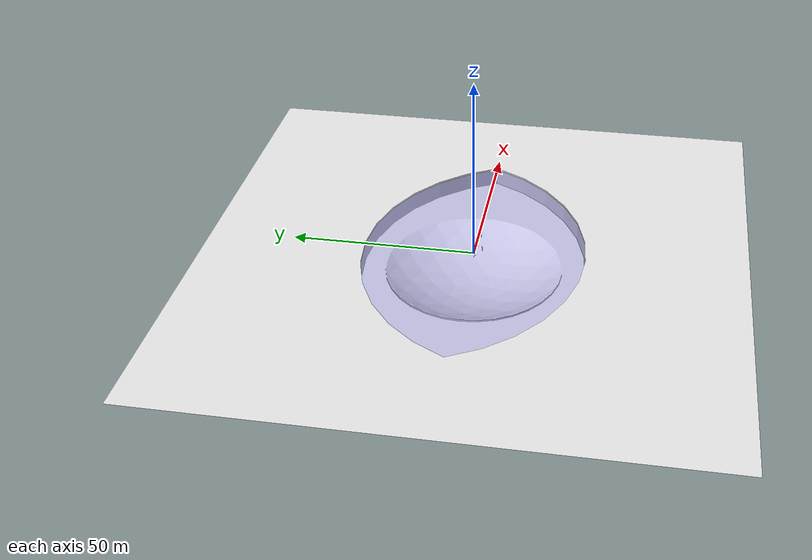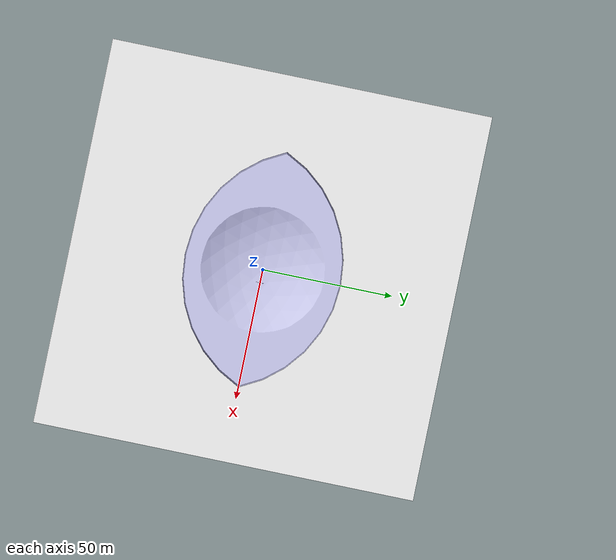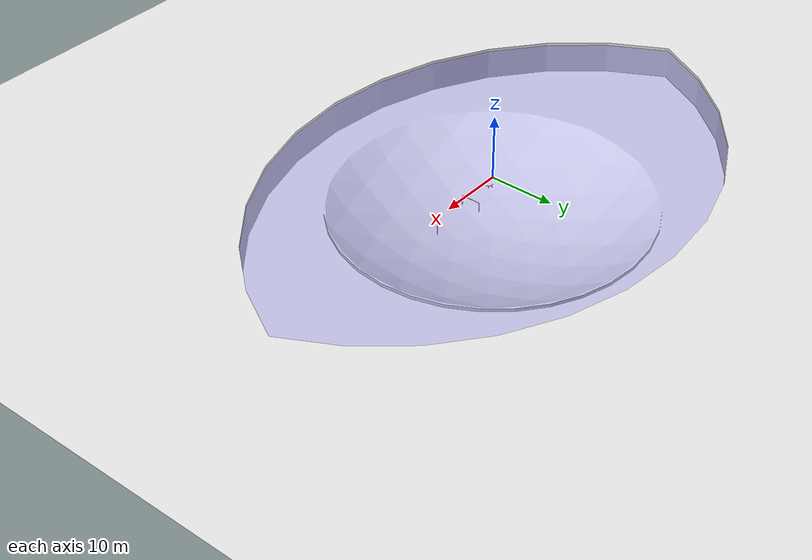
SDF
<sdf version="1.5">
 <world name="default">
  <physics type="ode">
   <real_time_update_rate>100</real_time_update_rate>
   <max_step_size>0.01</max_step_size>
  </physics>
  <spherical_coordinates>
   <surface_model>EARTH_WGS84</surface_model>
   <world_frame_orientation>ENU</world_frame_orientation>
   <latitude_deg>29.6474</latitude_deg>
   <longitude_deg>277.65027</longitude_deg>
   <elevation>0.4</elevation>
   <heading_deg>180</heading_deg>
  </spherical_coordinates>
  <magnetic_field>4.8302E-6 2.44943E-5 3.89367E-5</magnetic_field>
  <light name="illum" type="directional">
   <pose>-4 18 9 0 -.75 0</pose>
   <diffuse>0.1 0.4 1 1</diffuse>
   <attenuation><constant>1</constant></attenuation>
  </light>
  <light name="sky_illum" type="directional">
   <pose>0 0 5 3.14 0 0</pose>
   <diffuse>1 1 1 1</diffuse>
   <attenuation><constant>1</constant></attenuation>
  </light>
  <include><uri>model://sun</uri></include>
  <light name="user_point_light_0" type="point">
   <pose>0.109933 -0.142384 1 0 -0 0</pose>
   <diffuse>0.5 0.5 0.5 1</diffuse>
   <specular>0.1 0.1 0.1 1</specular>
   <attenuation>
    <range>100</range>
    <constant>0.5</constant>
    <linear>0.01</linear>
    <quadratic>0.001</quadratic>
   </attenuation>
   <cast_shadows>0</cast_shadows>
   <direction>0 0 -1</direction>
  </light>
  <light name="user_point_light_1" type="point">
   <pose>-29.7505 -0.454729 1 0 -0 0</pose>
   <diffuse>0.5 0.5 0.5 1</diffuse>
   <specular>0.1 0.1 0.1 1</specular>
   <attenuation>
    <range>100</range>
    <constant>0.5</constant>
    <linear>0.01</linear>
    <quadratic>0.001</quadratic>
   </attenuation>
   <cast_shadows>0</cast_shadows>
   <direction>0 0 -1</direction>
  </light>
  <light name="user_point_light_2" type="point">
   <pose>31.6112 -2.69613 1 0 -0 0</pose>
   <diffuse>0.5 0.5 0.5 1</diffuse>
   <specular>0.1 0.1 0.1 1</specular>
   <attenuation>
    <range>100</range>
    <constant>0.5</constant>
    <linear>0.01</linear>
    <quadratic>0.001</quadratic>
   </attenuation>
   <cast_shadows>0</cast_shadows>
   <direction>0 0 -1</direction>
  </light>
  <model name="water">
   <static>true</static>
   <pose>0 0 0 0 3.1415 0</pose>
   <link name="link">
    <visual name="visual">
     <transparency>0.8</transparency>
     <cast_shadows>false</cast_shadows>
     <geometry><box><size>92 61 .02</size></box></geometry>
     <material>
      <ambient>0.2 0.2 0.9 1</ambient>
      <diffuse>0.2 0.2 0.9 1</diffuse>
      <specular>0.1 0.1 0.3 1</specular>
      <emissive>0 0 0 1</emissive>
     </material>
    </visual>
   </link>
  </model>
  <model name="transdec">
   <pose>0 0 .5  0 0 0</pose>
   <static>true</static>
   <link name="ground">
    <visual name="visual">
     <geometry><mesh><uri>file://transdec/transdec.dae</uri><scale>0.5 0.5 0.5</scale></mesh></geometry>
     <material>
      <script><uri>file://media/materials/scripts/gazebo.material</uri><name>Gazebo/White</name></script>
     </material>
    </visual>
    <collision name="collision">
     <geometry><mesh><uri>file://transdec/transdec.dae</uri><scale>0.5 0.5 0.5</scale></mesh></geometry>
    </collision>
   </link>
  </model>
  <model name="qual_pole">
   <static>1</static>
   <link name="qual_pole">
    <collision name="qual_polecol">
     <pose>0 0 0 1.57 -0 0</pose>
     <geometry><mesh><uri>file://qual_pole/qual_pole.dae</uri></mesh></geometry>
    </collision>
    <visual name="qual_polevis">
     <pose>0 0 0 1.57 -0 0</pose>
     <geometry><mesh><uri>file://qual_pole/qual_pole.dae</uri></mesh></geometry>
    </visual>
   </link>
   <pose>12.417 0 -2.86 0 -0 0</pose>
  </model>
  <model name="start_gate">
   <static>1</static>
   <link name="start_gate">
    <collision name="start_gatecol">
     <pose>0 0 0 1.57 -0 0</pose>
     <geometry><mesh><uri>file://start_gate/start_gate.dae</uri></mesh></geometry>
    </collision>
    <visual name="start_gatevis">
     <pose>0 0 0 1.57 -0 0</pose>
     <geometry><mesh><uri>file://start_gate/start_gate.dae</uri></mesh></geometry>
    </visual>
   </link>
   <pose>5.055 -1.546 -2.5 0 -0 1.57</pose>
  </model>
  <model name="pathmarkers2018">
   <static>1</static>
   <link name="pathmarkers2018">
    <inertial>
     <mass>0.5</mass>
     <inertia><ixx>0</ixx><ixy>0</ixy><ixz>0</ixz><iyy>0</iyy><iyz>0</iyz><izz>0</izz></inertia>
    </inertial>
    <velocity_decay><linear>1e-05</linear><angular>1e-05</angular></velocity_decay>
    <collision name="pathmarkers2018col">
     <geometry><mesh><uri>file://markers/PathMarkers2018s.dae</uri></mesh></geometry>
    </collision>
    <sensor name="contact" type="contact">
     <contact><collision>pathmarkers2018col</collision><topic>__default_topic__</topic></contact>
     <update_rate>50</update_rate>
     <plugin name="gazebo_ros_bumper_controller" filename="libgazebo_ros_bumper.so">
      <alwaysOn>1</alwaysOn>
      <bumperTopicName>contact_bumper</bumperTopicName>
     </plugin>
    </sensor>
    <visual name="pathmarkers2018vis">
     <geometry><mesh><uri>file://markers/PathMarkers2018s.dae</uri></mesh></geometry>
    </visual>
   </link>
   <pose>-0.11 0.1787 -1.49 0 -0 0</pose>
  </model>
  <scene><sky><clouds><speed>12</speed></clouds></sky></scene>
 </world>
</sdf>
